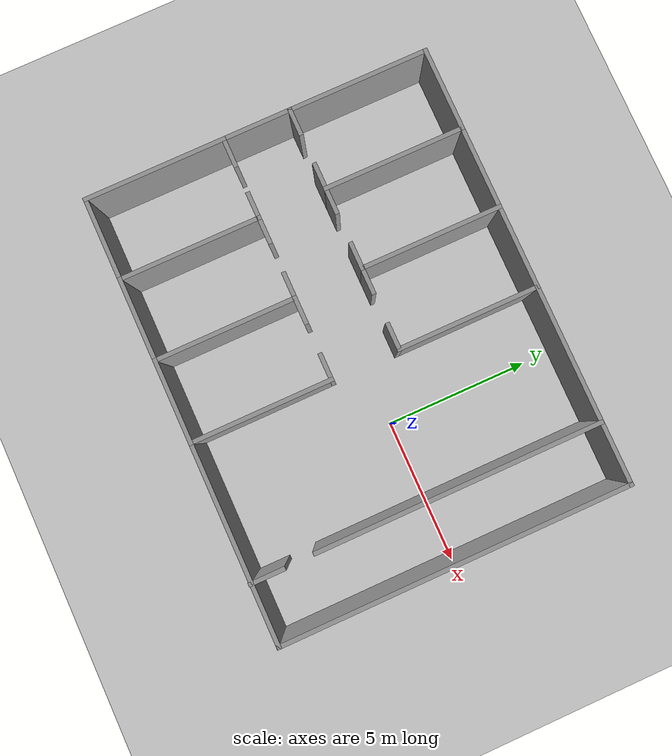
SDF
<sdf version="1.7">
 <world name="default">
  <light name="sun" type="directional">
   <pose>0 0 10 0 -0 0</pose>
   <diffuse>0.8 0.8 0.8 1</diffuse>
   <specular>0.2 0.2 0.2 1</specular>
   <attenuation>
    <range>1000</range>
    <constant>0.9</constant>
    <linear>0.01</linear>
    <quadratic>0.001</quadratic>
   </attenuation>
   <direction>-0.5 0.1 -0.9</direction>
   <spot><inner_angle>0</inner_angle><outer_angle>0</outer_angle><falloff>0</falloff></spot>
  </light>
  <model name="ground_plane">
   <static>1</static>
   <link name="link">
    <collision name="collision">
     <geometry><plane><normal>0 0 1</normal><size>100 100</size></plane></geometry>
     <surface>
      <contact><collide_bitmask>65535</collide_bitmask></contact>
      <friction><ode><mu>100</mu><mu2>50</mu2></ode></friction>
     </surface>
    </collision>
    <visual name="visual">
     <cast_shadows>0</cast_shadows>
     <geometry><plane><normal>0 0 1</normal><size>100 100</size></plane></geometry>
     <material>
      <script><uri>file://media/materials/scripts/gazebo.material</uri><name>Gazebo/Grey</name></script>
     </material>
    </visual>
   </link>
  </model>
  <physics type="ode">
   <real_time_update_rate>1000</real_time_update_rate>
   <max_step_size>0.001</max_step_size>
   <real_time_factor>1</real_time_factor>
   <ode>
    <solver>
     <type>quick</type>
     <iters>150</iters>
     <precon_iters>0</precon_iters>
     <sor>1.4</sor>
     <use_dynamic_moi_rescaling>1</use_dynamic_moi_rescaling>
    </solver>
    <constraints>
     <cfm>1e-05</cfm>
     <erp>0.2</erp>
     <contact_max_correcting_vel>2000</contact_max_correcting_vel>
     <contact_surface_layer>0.01</contact_surface_layer>
    </constraints>
   </ode>
  </physics>
  <model name="turtlebot3_hotel">
   <pose>-2.9042 -0.036785 0 0 -0 0</pose>
   <link name="Wall_0">
    <collision name="Wall_0_Collision">
     <geometry><box><size>3 0.15 2.5</size></box></geometry>
     <pose>0 0 1.25 0 -0 0</pose>
    </collision>
    <visual name="Wall_0_Visual">
     <pose>0 0 1.25 0 -0 0</pose>
     <geometry><box><size>3 0.15 2.5</size></box></geometry>
     <material>
      <script><uri>file://media/materials/scripts/gazebo.material</uri><name>Gazebo/Grey</name></script>
      <ambient>1 1 1 1</ambient>
     </material>
     <meta><layer>0</layer></meta>
    </visual>
    <pose>-6.275 -6.01306 0 0 -0 0</pose>
   </link>
   <link name="Wall_10">
    <collision name="Wall_10_Collision">
     <geometry><box><size>5 0.15 2.5</size></box></geometry>
     <pose>0 0 1.25 0 -0 0</pose>
    </collision>
    <visual name="Wall_10_Visual">
     <pose>0 0 1.25 0 -0 0</pose>
     <geometry><box><size>5 0.15 2.5</size></box></geometry>
     <material>
      <script><uri>file://media/materials/scripts/gazebo.material</uri><name>Gazebo/Grey</name></script>
      <ambient>1 1 1 1</ambient>
     </material>
     <meta><layer>0</layer></meta>
    </visual>
    <pose>-2 -3.58806 0 0 -0 1.5708</pose>
   </link>
   <link name="Wall_11">
    <collision name="Wall_11_Collision">
     <geometry><box><size>1 0.15 2.5</size></box></geometry>
     <pose>0 0 1.25 0 -0 0</pose>
    </collision>
    <visual name="Wall_11_Visual">
     <pose>0 0 1.25 0 -0 0</pose>
     <geometry><box><size>1 0.15 2.5</size></box></geometry>
     <material>
      <script><uri>file://media/materials/scripts/gazebo.material</uri><name>Gazebo/Grey</name></script>
      <ambient>1 1 1 1</ambient>
     </material>
     <meta><layer>0</layer></meta>
    </visual>
    <pose>-2.425 -1.16306 0 0 -0 3.14159</pose>
   </link>
   <link name="Wall_16">
    <collision name="Wall_16_Collision">
     <geometry><box><size>5 0.15 2.5</size></box></geometry>
     <pose>0 0 1.25 0 -0 0</pose>
    </collision>
    <visual name="Wall_16_Visual">
     <pose>0 0 1.25 0 -0 0</pose>
     <geometry><box><size>5 0.15 2.5</size></box></geometry>
     <material>
      <script><uri>file://media/materials/scripts/gazebo.material</uri><name>Gazebo/Grey</name></script>
      <ambient>1 1 1 1</ambient>
     </material>
     <meta><layer>0</layer></meta>
    </visual>
    <pose>-4.85 -3.58806 0 0 -0 1.5708</pose>
   </link>
   <link name="Wall_17">
    <collision name="Wall_17_Collision">
     <geometry><box><size>1 0.15 2.5</size></box></geometry>
     <pose>0 0 1.25 0 -0 0</pose>
    </collision>
    <visual name="Wall_17_Visual">
     <pose>0 0 1.25 0 -0 0</pose>
     <geometry><box><size>1 0.15 2.5</size></box></geometry>
     <material>
      <script><uri>file://media/materials/scripts/gazebo.material</uri><name>Gazebo/Grey</name></script>
      <ambient>1 1 1 1</ambient>
     </material>
     <meta><layer>0</layer></meta>
    </visual>
    <pose>-5.275 -1.16306 0 0 -0 3.14159</pose>
   </link>
   <link name="Wall_19">
    <collision name="Wall_19_Collision">
     <geometry><box><size>3 0.15 2.5</size></box></geometry>
     <pose>0 0 1.25 0 -0 0</pose>
    </collision>
    <visual name="Wall_19_Visual">
     <pose>0 0 1.25 0 -0 0</pose>
     <geometry><box><size>3 0.15 2.5</size></box></geometry>
     <material>
      <script><uri>file://media/materials/scripts/gazebo.material</uri><name>Gazebo/Grey</name></script>
      <ambient>1 1 1 1</ambient>
     </material>
     <meta><layer>0</layer></meta>
    </visual>
    <pose>-3.425 -6.01306 0 0 -0 0</pose>
   </link>
   <link name="Wall_2">
    <collision name="Wall_2_Collision">
     <geometry><box><size>5 0.15 2.5</size></box></geometry>
     <pose>0 0 1.25 0 -0 0</pose>
    </collision>
    <visual name="Wall_2_Visual">
     <pose>0 0 1.25 0 -0 0</pose>
     <geometry><box><size>5 0.15 2.5</size></box></geometry>
     <material>
      <script><uri>file://media/materials/scripts/gazebo.material</uri><name>Gazebo/Grey</name></script>
      <ambient>1 1 1 1</ambient>
     </material>
     <meta><layer>0</layer></meta>
    </visual>
    <pose>-7.7 -3.58806 0 0 -0 1.5708</pose>
   </link>
   <link name="Wall_21">
    <collision name="Wall_21_Collision">
     <geometry><box><size>1 0.15 2.5</size></box></geometry>
     <pose>0 0 1.25 0 -0 0</pose>
    </collision>
    <visual name="Wall_21_Visual">
     <pose>0 0 1.25 0 -0 0</pose>
     <geometry><box><size>1 0.15 2.5</size></box></geometry>
     <material>
      <script><uri>file://media/materials/scripts/gazebo.material</uri><name>Gazebo/Grey</name></script>
      <ambient>1 1 1 1</ambient>
     </material>
     <meta><layer>0</layer></meta>
    </visual>
    <pose>-4.425 -1.16306 0 0 -0 0</pose>
   </link>
   <link name="Wall_24">
    <collision name="Wall_24_Collision">
     <geometry><box><size>3 0.15 2.5</size></box></geometry>
     <pose>0 0 1.25 0 -0 0</pose>
    </collision>
    <visual name="Wall_24_Visual">
     <pose>0 0 1.25 0 -0 0</pose>
     <geometry><box><size>3 0.15 2.5</size></box></geometry>
     <material>
      <script><uri>file://media/materials/scripts/gazebo.material</uri><name>Gazebo/Grey</name></script>
      <ambient>1 1 1 1</ambient>
     </material>
     <meta><layer>0</layer></meta>
    </visual>
    <pose>-0.575 -6.01306 0 0 -0 0</pose>
   </link>
   <link name="Wall_25">
    <collision name="Wall_25_Collision">
     <geometry><box><size>5 0.15 2.5</size></box></geometry>
     <pose>0 0 1.25 0 -0 0</pose>
    </collision>
    <visual name="Wall_25_Visual">
     <pose>0 0 1.25 0 -0 0</pose>
     <geometry><box><size>5 0.15 2.5</size></box></geometry>
     <material>
      <script><uri>file://media/materials/scripts/gazebo.material</uri><name>Gazebo/Grey</name></script>
      <ambient>1 1 1 1</ambient>
     </material>
     <meta><layer>0</layer></meta>
    </visual>
    <pose>0.85 -3.58806 0 0 -0 1.5708</pose>
   </link>
   <link name="Wall_26">
    <collision name="Wall_26_Collision">
     <geometry><box><size>1 0.15 2.5</size></box></geometry>
     <pose>0 0 1.25 0 -0 0</pose>
    </collision>
    <visual name="Wall_26_Visual">
     <pose>0 0 1.25 0 -0 0</pose>
     <geometry><box><size>1 0.15 2.5</size></box></geometry>
     <material>
      <script><uri>file://media/materials/scripts/gazebo.material</uri><name>Gazebo/Grey</name></script>
      <ambient>1 1 1 1</ambient>
     </material>
     <meta><layer>0</layer></meta>
    </visual>
    <pose>0.425 -1.16306 0 0 -0 3.14159</pose>
   </link>
   <link name="Wall_28">
    <collision name="Wall_28_Collision">
     <geometry><box><size>1 0.15 2.5</size></box></geometry>
     <pose>0 0 1.25 0 -0 0</pose>
    </collision>
    <visual name="Wall_28_Visual">
     <pose>0 0 1.25 0 -0 0</pose>
     <geometry><box><size>1 0.15 2.5</size></box></geometry>
     <material>
      <script><uri>file://media/materials/scripts/gazebo.material</uri><name>Gazebo/Grey</name></script>
      <ambient>1 1 1 1</ambient>
     </material>
     <meta><layer>0</layer></meta>
    </visual>
    <pose>-1.575 -1.16306 0 0 -0 0</pose>
   </link>
   <link name="Wall_3">
    <collision name="Wall_3_Collision">
     <geometry><box><size>1.1 0.15 2.5</size></box></geometry>
     <pose>0 0 1.25 0 -0 0</pose>
    </collision>
    <visual name="Wall_3_Visual">
     <pose>0 0 1.25 0 -0 0</pose>
     <geometry><box><size>1.1 0.15 2.5</size></box></geometry>
     <material>
      <script><uri>file://media/materials/scripts/gazebo.material</uri><name>Gazebo/Grey</name></script>
      <ambient>1 1 1 1</ambient>
     </material>
     <meta><layer>0</layer></meta>
    </visual>
    <pose>-7.225 -1.16306 0 0 -0 0</pose>
   </link>
   <link name="Wall_30">
    <collision name="Wall_30_Collision">
     <geometry><box><size>2.5 0.15 2.5</size></box></geometry>
     <pose>0 0 1.25 0 -0 0</pose>
    </collision>
    <visual name="Wall_30_Visual">
     <pose>0 0 1.25 0 -0 0</pose>
     <geometry><box><size>2.5 0.15 2.5</size></box></geometry>
     <material>
      <script><uri>file://media/materials/scripts/gazebo.material</uri><name>Gazebo/Grey</name></script>
      <ambient>1 1 1 1</ambient>
     </material>
     <meta><layer>0</layer></meta>
    </visual>
    <pose>-7.7 0.011938 0 0 -0 1.5708</pose>
   </link>
   <link name="Wall_31">
    <collision name="Wall_31_Collision">
     <geometry><box><size>1 0.15 2.5</size></box></geometry>
     <pose>0 0 1.25 0 -0 0</pose>
    </collision>
    <visual name="Wall_31_Visual">
     <pose>0 0 1.25 0 -0 0</pose>
     <geometry><box><size>1 0.15 2.5</size></box></geometry>
     <material>
      <script><uri>file://media/materials/scripts/gazebo.material</uri><name>Gazebo/Grey</name></script>
      <ambient>1 1 1 1</ambient>
     </material>
     <meta><layer>0</layer></meta>
    </visual>
    <pose>-7.275 1.18694 0 0 -0 0</pose>
   </link>
   <link name="Wall_34">
    <collision name="Wall_34_Collision">
     <geometry><box><size>5 0.15 2.5</size></box></geometry>
     <pose>0 0 1.25 0 -0 0</pose>
    </collision>
    <visual name="Wall_34_Visual">
     <pose>0 0 1.25 0 -0 0</pose>
     <geometry><box><size>5 0.15 2.5</size></box></geometry>
     <material>
      <script><uri>file://media/materials/scripts/gazebo.material</uri><name>Gazebo/Grey</name></script>
      <ambient>1 1 1 1</ambient>
     </material>
     <meta><layer>0</layer></meta>
    </visual>
    <pose>-7.7 3.61194 0 0 -0 1.5708</pose>
   </link>
   <link name="Wall_35">
    <collision name="Wall_35_Collision">
     <geometry><box><size>3 0.15 2.5</size></box></geometry>
     <pose>0 0 1.25 0 -0 0</pose>
    </collision>
    <visual name="Wall_35_Visual">
     <pose>0 0 1.25 0 -0 0</pose>
     <geometry><box><size>3 0.15 2.5</size></box></geometry>
     <material>
      <script><uri>file://media/materials/scripts/gazebo.material</uri><name>Gazebo/Grey</name></script>
      <ambient>1 1 1 1</ambient>
     </material>
     <meta><layer>0</layer></meta>
    </visual>
    <pose>-6.275 6.03694 0 0 -0 0</pose>
   </link>
   <link name="Wall_36">
    <collision name="Wall_36_Collision">
     <geometry><box><size>5 0.15 2.5</size></box></geometry>
     <pose>0 0 1.25 0 -0 0</pose>
    </collision>
    <visual name="Wall_36_Visual">
     <pose>0 0 1.25 0 -0 0</pose>
     <geometry><box><size>5 0.15 2.5</size></box></geometry>
     <material>
      <script><uri>file://media/materials/scripts/gazebo.material</uri><name>Gazebo/Grey</name></script>
      <ambient>1 1 1 1</ambient>
     </material>
     <meta><layer>0</layer></meta>
    </visual>
    <pose>-4.85 3.61194 0 0 -0 -1.5708</pose>
   </link>
   <link name="Wall_37">
    <collision name="Wall_37_Collision">
     <geometry><box><size>1 0.15 2.5</size></box></geometry>
     <pose>0 0 1.25 0 -0 0</pose>
    </collision>
    <visual name="Wall_37_Visual">
     <pose>0 0 1.25 0 -0 0</pose>
     <geometry><box><size>1 0.15 2.5</size></box></geometry>
     <material>
      <script><uri>file://media/materials/scripts/gazebo.material</uri><name>Gazebo/Grey</name></script>
      <ambient>1 1 1 1</ambient>
     </material>
     <meta><layer>0</layer></meta>
    </visual>
    <pose>-5.275 1.18694 0 0 -0 3.14159</pose>
   </link>
   <link name="Wall_39">
    <collision name="Wall_39_Collision">
     <geometry><box><size>1 0.15 2.5</size></box></geometry>
     <pose>0 0 1.25 0 -0 0</pose>
    </collision>
    <visual name="Wall_39_Visual">
     <pose>0 0 1.25 0 -0 0</pose>
     <geometry><box><size>1 0.15 2.5</size></box></geometry>
     <material>
      <script><uri>file://media/materials/scripts/gazebo.material</uri><name>Gazebo/Grey</name></script>
      <ambient>1 1 1 1</ambient>
     </material>
     <meta><layer>0</layer></meta>
    </visual>
    <pose>-4.425 1.18694 0 0 -0 0</pose>
   </link>
   <link name="Wall_41">
    <collision name="Wall_41_Collision">
     <geometry><box><size>3 0.15 2.5</size></box></geometry>
     <pose>0 0 1.25 0 -0 0</pose>
    </collision>
    <visual name="Wall_41_Visual">
     <pose>0 0 1.25 0 -0 0</pose>
     <geometry><box><size>3 0.15 2.5</size></box></geometry>
     <material>
      <script><uri>file://media/materials/scripts/gazebo.material</uri><name>Gazebo/Grey</name></script>
      <ambient>1 1 1 1</ambient>
     </material>
     <meta><layer>0</layer></meta>
    </visual>
    <pose>-3.425 6.03694 0 0 -0 0</pose>
   </link>
   <link name="Wall_42">
    <collision name="Wall_42_Collision">
     <geometry><box><size>5 0.15 2.5</size></box></geometry>
     <pose>0 0 1.25 0 -0 0</pose>
    </collision>
    <visual name="Wall_42_Visual">
     <pose>0 0 1.25 0 -0 0</pose>
     <geometry><box><size>5 0.15 2.5</size></box></geometry>
     <material>
      <script><uri>file://media/materials/scripts/gazebo.material</uri><name>Gazebo/Grey</name></script>
      <ambient>1 1 1 1</ambient>
     </material>
     <meta><layer>0</layer></meta>
    </visual>
    <pose>-2 3.61194 0 0 -0 -1.5708</pose>
   </link>
   <link name="Wall_43">
    <collision name="Wall_43_Collision">
     <geometry><box><size>1 0.15 2.5</size></box></geometry>
     <pose>0 0 1.25 0 -0 0</pose>
    </collision>
    <visual name="Wall_43_Visual">
     <pose>0 0 1.25 0 -0 0</pose>
     <geometry><box><size>1 0.15 2.5</size></box></geometry>
     <material>
      <script><uri>file://media/materials/scripts/gazebo.material</uri><name>Gazebo/Grey</name></script>
      <ambient>1 1 1 1</ambient>
     </material>
     <meta><layer>0</layer></meta>
    </visual>
    <pose>-2.425 1.18694 0 0 -0 3.14159</pose>
   </link>
   <link name="Wall_45">
    <collision name="Wall_45_Collision">
     <geometry><box><size>3 0.15 2.5</size></box></geometry>
     <pose>0 0 1.25 0 -0 0</pose>
    </collision>
    <visual name="Wall_45_Visual">
     <pose>0 0 1.25 0 -0 0</pose>
     <geometry><box><size>3 0.15 2.5</size></box></geometry>
     <material>
      <script><uri>file://media/materials/scripts/gazebo.material</uri><name>Gazebo/Grey</name></script>
      <ambient>1 1 1 1</ambient>
     </material>
     <meta><layer>0</layer></meta>
    </visual>
    <pose>-0.575 6.03694 0 0 -0 0</pose>
   </link>
   <link name="Wall_46">
    <collision name="Wall_46_Collision">
     <geometry><box><size>5 0.15 2.5</size></box></geometry>
     <pose>0 0 1.25 0 -0 0</pose>
    </collision>
    <visual name="Wall_46_Visual">
     <pose>0 0 1.25 0 -0 0</pose>
     <geometry><box><size>5 0.15 2.5</size></box></geometry>
     <material>
      <script><uri>file://media/materials/scripts/gazebo.material</uri><name>Gazebo/Grey</name></script>
      <ambient>1 1 1 1</ambient>
     </material>
     <meta><layer>0</layer></meta>
    </visual>
    <pose>0.85 3.61194 0 0 -0 -1.5708</pose>
   </link>
   <link name="Wall_47">
    <collision name="Wall_47_Collision">
     <geometry><box><size>1 0.15 2.5</size></box></geometry>
     <pose>0 0 1.25 0 -0 0</pose>
    </collision>
    <visual name="Wall_47_Visual">
     <pose>0 0 1.25 0 -0 0</pose>
     <geometry><box><size>1 0.15 2.5</size></box></geometry>
     <material>
      <script><uri>file://media/materials/scripts/gazebo.material</uri><name>Gazebo/Grey</name></script>
      <ambient>1 1 1 1</ambient>
     </material>
     <meta><layer>0</layer></meta>
    </visual>
    <pose>0.425 1.18694 0 0 -0 3.14159</pose>
   </link>
   <link name="Wall_49">
    <collision name="Wall_49_Collision">
     <geometry><box><size>1 0.15 2.5</size></box></geometry>
     <pose>0 0 1.25 0 -0 0</pose>
    </collision>
    <visual name="Wall_49_Visual">
     <pose>0 0 1.25 0 -0 0</pose>
     <geometry><box><size>1 0.15 2.5</size></box></geometry>
     <material>
      <script><uri>file://media/materials/scripts/gazebo.material</uri><name>Gazebo/Grey</name></script>
      <ambient>1 1 1 1</ambient>
     </material>
     <meta><layer>0</layer></meta>
    </visual>
    <pose>-1.575 1.18694 0 0 -0 0</pose>
   </link>
   <link name="Wall_51">
    <collision name="Wall_51_Collision">
     <geometry><box><size>7 0.15 2.5</size></box></geometry>
     <pose>0 0 1.25 0 -0 0</pose>
    </collision>
    <visual name="Wall_51_Visual">
     <pose>0 0 1.25 0 -0 0</pose>
     <geometry><box><size>7 0.15 2.5</size></box></geometry>
     <material>
      <script><uri>file://media/materials/scripts/gazebo.material</uri><name>Gazebo/Grey</name></script>
      <ambient>1 1 1 1</ambient>
     </material>
     <meta><layer>0</layer></meta>
    </visual>
    <pose>4.275 6.03694 0 0 -0 0</pose>
   </link>
   <link name="Wall_52">
    <collision name="Wall_52_Collision">
     <geometry><box><size>12.1892 0.15 2.5</size></box></geometry>
     <pose>0 0 1.25 0 -0 0</pose>
    </collision>
    <visual name="Wall_52_Visual">
     <pose>0 0 1.25 0 -0 0</pose>
     <geometry><box><size>12.1892 0.15 2.5</size></box></geometry>
     <material>
      <script><uri>file://media/materials/scripts/gazebo.material</uri><name>Gazebo/Grey</name></script>
      <ambient>1 1 1 1</ambient>
     </material>
     <meta><layer>0</layer></meta>
    </visual>
    <pose>7.7 0.017356 0 0 -0 -1.5708</pose>
   </link>
   <link name="Wall_54">
    <collision name="Wall_54_Collision">
     <geometry><box><size>7 0.15 2.5</size></box></geometry>
     <pose>0 0 1.25 0 -0 0</pose>
    </collision>
    <visual name="Wall_54_Visual">
     <pose>0 0 1.25 0 -0 0</pose>
     <geometry><box><size>7 0.15 2.5</size></box></geometry>
     <material>
      <script><uri>file://media/materials/scripts/gazebo.material</uri><name>Gazebo/Grey</name></script>
      <ambient>1 1 1 1</ambient>
     </material>
     <meta><layer>0</layer></meta>
    </visual>
    <pose>4.275 -6.01306 0 0 -0 0</pose>
   </link>
   <link name="Wall_58">
    <collision name="Wall_58_Collision">
     <geometry><box><size>10 0.15 2.5</size></box></geometry>
     <pose>0 0 1.25 0 -0 0</pose>
    </collision>
    <visual name="Wall_58_Visual">
     <pose>0 0 1.25 0 -0 0</pose>
     <geometry><box><size>10 0.15 2.5</size></box></geometry>
     <material>
      <script><uri>file://media/materials/scripts/gazebo.material</uri><name>Gazebo/Grey</name></script>
      <ambient>1 1 1 1</ambient>
     </material>
     <meta><layer>0</layer></meta>
    </visual>
    <pose>5.56835 1.0986 0 0 -0 -1.5708</pose>
   </link>
   <link name="Wall_63">
    <collision name="Wall_63_Collision">
     <geometry><box><size>1.25 0.15 2.5</size></box></geometry>
     <pose>0 0 1.25 0 -0 0</pose>
    </collision>
    <visual name="Wall_63_Visual">
     <pose>0 0 1.25 0 -0 0</pose>
     <geometry><box><size>1.25 0.15 2.5</size></box></geometry>
     <material>
      <script><uri>file://media/materials/scripts/gazebo.material</uri><name>Gazebo/Grey</name></script>
      <ambient>1 1 1 1</ambient>
     </material>
     <meta><layer>0</layer></meta>
    </visual>
    <pose>5.59877 -5.48694 0 0 -0 1.5708</pose>
   </link>
   <static>1</static>
  </model>
  <scene><ambient>0.4 0.4 0.4 1</ambient><background>0.7 0.7 0.7 1</background><shadows>1</shadows></scene>
  <gravity>0 0 -9.8</gravity>
  <magnetic_field>6e-06 2.3e-05 -4.2e-05</magnetic_field>
  <atmosphere type="adiabatic"/>
  <spherical_coordinates>
   <surface_model>EARTH_WGS84</surface_model>
   <latitude_deg>0</latitude_deg>
   <longitude_deg>0</longitude_deg>
   <elevation>0</elevation>
   <heading_deg>0</heading_deg>
  </spherical_coordinates>
 </world>
</sdf>
